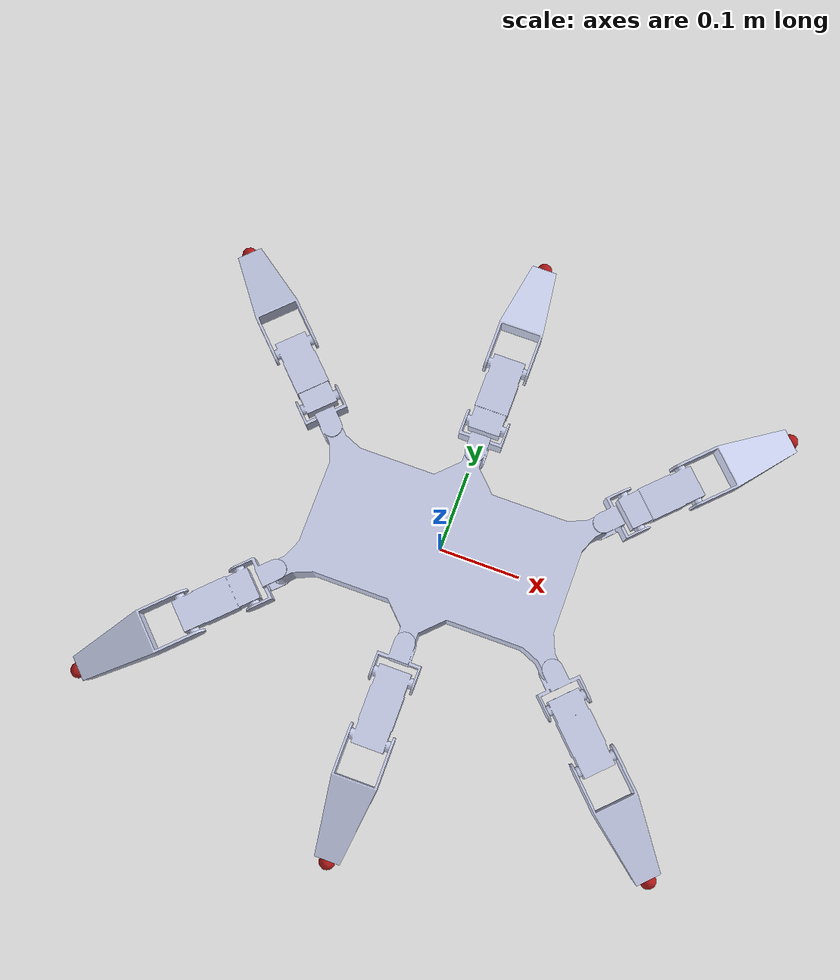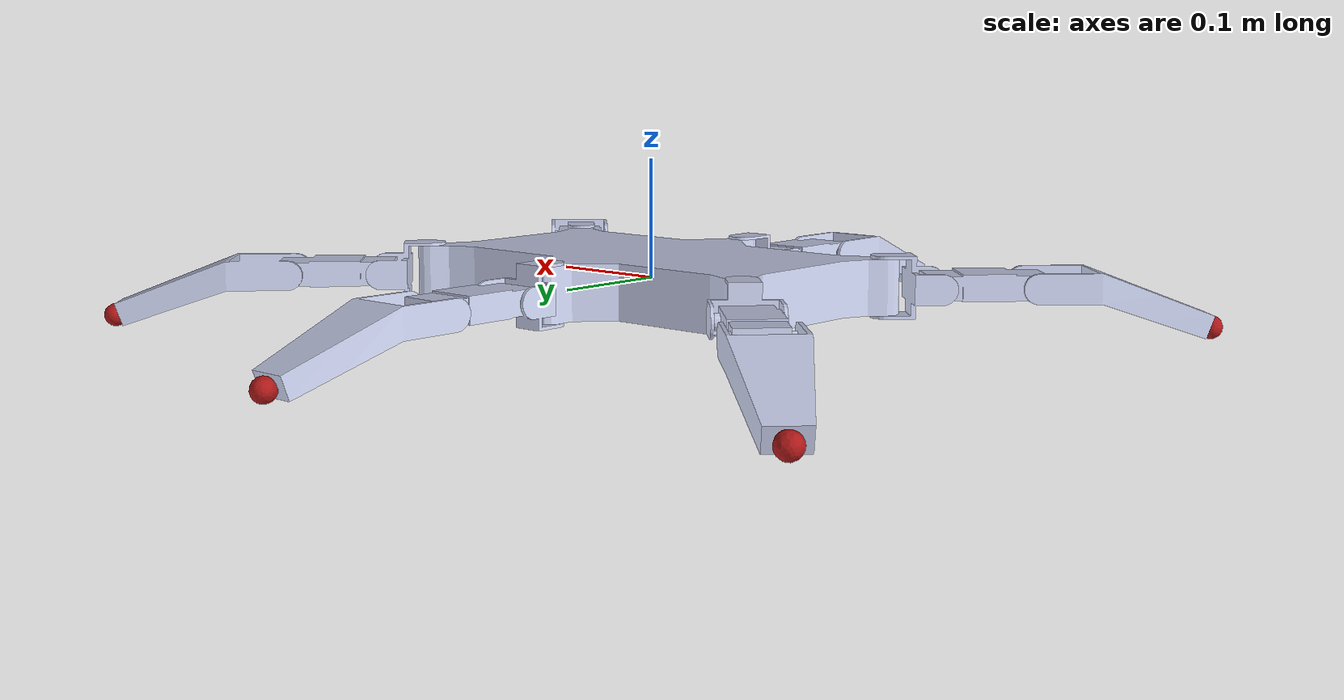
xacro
<?xml version="1.0"?>
<robot name="neurowalker" xmlns:xacro="http://www.ros.org/wiki/xacro">

    <!-- Choose whether to generate KDL compatible URDF (Extra dummy link without inertia properties) -->
    <xacro:arg name="kdl_compatible" default="false" />
    <xacro:property name="kdl_compatible" value="$(arg kdl_compatible)" />

    <!-- Include robot links -->
    <!-- Choose whether to use simplified meshes -->
    <xacro:arg name="simplify_meshes" default="true" />
    <xacro:property name="simplify_meshes" value="$(arg simplify_meshes)" />
    <xacro:include filename="macros/links.xacro" />

    <!-- Include robot joints -->
    <!-- Choose whether to add dynamics tag. In this package it doesnt matter -->
    <xacro:arg name="use_joint_dynamics" default="false" />
    <xacro:property name="use_joint_dynamics" value="$(arg use_joint_dynamics)" />
    <xacro:include filename="macros/joints.xacro" />

</robot>

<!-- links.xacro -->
<robot xmlns:xacro="http://www.ros.org/wiki/xacro">

    <xacro:include filename="link_components.xacro" />

    <xacro:if value="${kdl_compatible}">
        <link name="dummy_link" />
    </xacro:if>

    <xacro:base_link simplify_meshes="${simplify_meshes}" />

    <xacro:hip_link suffix="_1" simplify_meshes="${simplify_meshes}" />
    <xacro:femur_link suffix="_1" simplify_meshes="${simplify_meshes}" />
    <xacro:tibia_link suffix="_1" simplify_meshes="${simplify_meshes}" />
    <xacro:foot_tip_link suffix="_1" simplify_meshes="${simplify_meshes}" />

    <xacro:hip_link suffix="_2" simplify_meshes="${simplify_meshes}" />
    <xacro:femur_link suffix="_2" simplify_meshes="${simplify_meshes}" />
    <xacro:tibia_link suffix="_2" simplify_meshes="${simplify_meshes}" />
    <xacro:foot_tip_link suffix="_2" simplify_meshes="${simplify_meshes}" />

    <xacro:hip_link suffix="_3" simplify_meshes="${simplify_meshes}" />
    <xacro:femur_link suffix="_3" simplify_meshes="${simplify_meshes}" />
    <xacro:tibia_link suffix="_3" simplify_meshes="${simplify_meshes}" />
    <xacro:foot_tip_link suffix="_3" simplify_meshes="${simplify_meshes}" />

    <xacro:hip_link suffix="_4" simplify_meshes="${simplify_meshes}" />
    <xacro:femur_link suffix="_4" simplify_meshes="${simplify_meshes}" />
    <xacro:tibia_link suffix="_4" simplify_meshes="${simplify_meshes}" />
    <xacro:foot_tip_link suffix="_4" simplify_meshes="${simplify_meshes}" />

    <xacro:hip_link suffix="_5" simplify_meshes="${simplify_meshes}" />
    <xacro:femur_link suffix="_5" simplify_meshes="${simplify_meshes}" />
    <xacro:tibia_link suffix="_5" simplify_meshes="${simplify_meshes}" />
    <xacro:foot_tip_link suffix="_5" simplify_meshes="${simplify_meshes}" />

    <xacro:hip_link suffix="_6" simplify_meshes="${simplify_meshes}" />
    <xacro:femur_link suffix="_6" simplify_meshes="${simplify_meshes}" />
    <xacro:tibia_link suffix="_6" simplify_meshes="${simplify_meshes}" />
    <xacro:foot_tip_link suffix="_6" simplify_meshes="${simplify_meshes}" />

</robot>

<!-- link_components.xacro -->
<robot xmlns:xacro="http://www.ros.org/wiki/xacro">

    <!-- Full meshes file path -->
    <xacro:property name="full_meshes" value="../meshes/full/stl" />

    <!-- Simlpified meshes file path -->
    <xacro:property name="simplified_meshes" value="../meshes/simplified/stl" />

    <!-- Link colors. robot_color applies to: base_link, hip_link, femur_link, tibia_link -->
    <xacro:property name="robot_color" value="0.79216 0.81961 0.93333 1" />
    <xacro:property name="foot_tip_color" value="0.694117647058824 0.0980392156862745 0.0980392156862745 1" />

    <xacro:macro name="base_link" params="simplify_meshes">
        <link name="base_link">
            <inertial>
                <origin xyz="-4.0647E-17 -2.3675E-17 -0.00046955" rpy="0 0 0" />
                <mass value="1.0408" />
                <inertia ixx="0.0011542" ixy="1.5544E-10" ixz="7.7333E-21" iyy="0.0039905" iyz="-3.097E-20" izz="0.0049674" />
            </inertial>
            <visual>
                <origin xyz="0 0 0" rpy="0 0 0" />
                <geometry>
                    <xacro:if value="${simplify_meshes}">
                        <mesh filename="${simplified_meshes}/base_link.STL" />
                    </xacro:if>
                    <xacro:unless value="${simplify_meshes}">
                        <mesh filename="${full_meshes}/base_link.STL" />
                    </xacro:unless>
                </geometry>
                <material name="">
                    <color rgba="${robot_color}" />
                </material>
            </visual>
            <collision>
                <origin xyz="0 0 0" rpy="0 0 0" />
                <geometry>
                    <xacro:if value="${simplify_meshes}">
                        <mesh filename="${simplified_meshes}/base_link.STL" />
                    </xacro:if>
                    <xacro:unless value="${simplify_meshes}">
                        <mesh filename="${full_meshes}/base_link.STL" />
                    </xacro:unless>
                </geometry>
            </collision>
        </link>
    </xacro:macro>

    <xacro:macro name="hip_link" params="suffix simplify_meshes">
        <link name="hip_link${suffix}">
            <inertial>
                <origin xyz="0.0207539578220567 0.00016313993084466 -0.000157508593183945" rpy="0 0 0" />
                <mass value="0.00976937887973851" />
                <inertia ixx="4.36001352628253E-06" ixy="3.05074712305715E-11" ixz="1.09800410231598E-11" iyy="3.54065431889005E-06" iyz="-8.43037492910402E-22" izz="3.53980041929617E-06" />
            </inertial>
            <visual>
                <origin xyz="0 0 0" rpy="0 0 0" />
                <geometry>
                    <xacro:if value="${simplify_meshes}">
                        <mesh filename="${simplified_meshes}/hip_link.STL" />
                    </xacro:if>
                    <xacro:unless value="${simplify_meshes}">
                        <mesh filename="${full_meshes}/hip_link.STL" />
                    </xacro:unless>
                </geometry>
                <material name="">
                    <color rgba="${robot_color}" />
                </material>
            </visual>
            <collision>
                <origin xyz="0 0 0" rpy="0 0 0" />
                <geometry>
                    <xacro:if value="${simplify_meshes}">
                        <mesh filename="${simplified_meshes}/hip_link.STL" />
                    </xacro:if>
                    <xacro:unless value="${simplify_meshes}">
                        <mesh filename="${full_meshes}/hip_link.STL" />
                    </xacro:unless>
                </geometry>
            </collision>
        </link>
    </xacro:macro>

    <xacro:macro name="femur_link" params="suffix simplify_meshes">
        <link name="femur_link${suffix}">
            <inertial>
                <origin xyz="0.039 -0.000267065647974397 1.30227414534182E-05" rpy="0 0 0" />
                <mass value="0.0681610759338743" />
                <inertia ixx="1.22383085422276E-05" ixy="1.5544030901566E-10" ixz="2.33365338510496E-21" iyy="1.88790791713266E-05" iyz="1.60983936131494E-21" izz="1.12330386801315E-05" />
            </inertial>
            <visual>
                <origin xyz="0 0 0" rpy="0 0 0" />
                <geometry>
                    <xacro:if value="${simplify_meshes}">
                        <mesh filename="${simplified_meshes}/femur_link.STL" />
                    </xacro:if>
                    <xacro:unless value="${simplify_meshes}">
                        <mesh filename="${full_meshes}/femur_link.STL" />
                    </xacro:unless>
                </geometry>
                <material name="">
                    <color rgba="${robot_color}" />
                </material>
            </visual>
            <collision>
                <origin xyz="0 0 0" rpy="0 0 0" />
                <geometry>
                    <xacro:if value="${simplify_meshes}">
                        <mesh filename="${simplified_meshes}/femur_link.STL" />
                    </xacro:if>
                    <xacro:unless value="${simplify_meshes}">
                        <mesh filename="${full_meshes}/femur_link.STL" />
                    </xacro:unless>
                </geometry>
            </collision>
        </link>
    </xacro:macro>

    <xacro:macro name="tibia_link" params="suffix simplify_meshes">
        <link name="tibia_link${suffix}">
            <inertial>
                <origin xyz="0.0863740398095008 -0.0136567529957215 2.8854666747154E-08" rpy="0 0 0" />
                <mass value="0.0518953116111732" />
                <inertia ixx="2.14028837547244E-05" ixy="1.20884063145876E-05" ixz="3.60427983546376E-11" iyy="5.18668393911014E-05" iyz="-1.36891234811654E-11" izz="4.38855876942104E-05" />
            </inertial>
            <visual>
                <origin xyz="0 0 0" rpy="0 0 0" />
                <geometry>
                    <xacro:if value="${simplify_meshes}">
                        <mesh filename="${simplified_meshes}/tibia_link.STL" />
                    </xacro:if>
                    <xacro:unless value="${simplify_meshes}">
                        <mesh filename="${full_meshes}/tibia_link.STL" />
                    </xacro:unless>
                </geometry>
                <material name="">
                    <color rgba="${robot_color}" />
                </material>
            </visual>
            <collision>
                <origin xyz="0 0 0" rpy="0 0 0" />
                <geometry>
                    <xacro:if value="${simplify_meshes}">
                        <mesh filename="${simplified_meshes}/tibia_link.STL" />
                    </xacro:if>
                    <xacro:unless value="${simplify_meshes}">
                        <mesh filename="${full_meshes}/tibia_link.STL" />
                    </xacro:unless>
                </geometry>
            </collision>
        </link>
    </xacro:macro>

    <xacro:macro name="foot_tip_link" params="suffix simplify_meshes">
        <link name="foot_tip_link${suffix}">
            <inertial>
                <origin xyz="0.00119417475728155 9.48943996844099E-20 -1.38897240469442E-19" rpy="0 0 0" />
                <mass value="0.00345156312874398" />
                <inertia ixx="1.55434275887049E-07" ixy="-1.7646776450454E-24" ixz="-3.90368160252396E-24" iyy="1.2879747429975E-07" iyz="-6.17628190706261E-24" izz="1.2879747429975E-07" />
            </inertial>
            <visual>
                <origin xyz="0 0 0" rpy="0 0 0" />
                <geometry>
                    <xacro:if value="${simplify_meshes}">
                        <mesh filename="${simplified_meshes}/foot_tip_link.STL" />
                    </xacro:if>
                    <xacro:unless value="${simplify_meshes}">
                        <mesh filename="${full_meshes}/foot_tip_link.STL" />
                    </xacro:unless>
                </geometry>
                <material name="">
                    <color rgba="${foot_tip_color}" />
                </material>
            </visual>
            <collision>
                <origin xyz="0 0 0" rpy="0 0 0" />
                <geometry>
                    <xacro:if value="${simplify_meshes}">
                        <mesh filename="${simplified_meshes}/foot_tip_link.STL" />
                    </xacro:if>
                    <xacro:unless value="${simplify_meshes}">
                        <mesh filename="${full_meshes}/foot_tip_link.STL" />
                    </xacro:unless>
                </geometry>
            </collision>
        </link>
    </xacro:macro>

</robot>

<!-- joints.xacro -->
<robot xmlns:xacro="http://www.ros.org/wiki/xacro">

    <xacro:include filename="joint_components.xacro" />

    <xacro:if value="${kdl_compatible}">
        <joint name="dummy_joint" type="fixed">
            <parent link="dummy_link" />
            <child link="base_link" />
            <origin xyz="0 0 0" rpy="0 0 0" />
        </joint>
    </xacro:if>

    <xacro:hip_joint suffix="_1" use_joint_dynamics="${use_joint_dynamics}"/>
    <xacro:femur_joint suffix="_1" use_joint_dynamics="${use_joint_dynamics}" />
    <xacro:tibia_joint suffix="_1" use_joint_dynamics="${use_joint_dynamics}" />
    <xacro:foot_tip_joint suffix="_1" />

    <xacro:hip_joint suffix="_2" use_joint_dynamics="${use_joint_dynamics}"/>
    <xacro:femur_joint suffix="_2" use_joint_dynamics="${use_joint_dynamics}" />
    <xacro:tibia_joint suffix="_2" use_joint_dynamics="${use_joint_dynamics}" />
    <xacro:foot_tip_joint suffix="_2" />

    <xacro:hip_joint suffix="_3" use_joint_dynamics="${use_joint_dynamics}"/>
    <xacro:femur_joint suffix="_3" use_joint_dynamics="${use_joint_dynamics}" />
    <xacro:tibia_joint suffix="_3" use_joint_dynamics="${use_joint_dynamics}" />
    <xacro:foot_tip_joint suffix="_3" />

    <xacro:hip_joint suffix="_4" use_joint_dynamics="${use_joint_dynamics}"/>
    <xacro:femur_joint suffix="_4" use_joint_dynamics="${use_joint_dynamics}" />
    <xacro:tibia_joint suffix="_4" use_joint_dynamics="${use_joint_dynamics}" />
    <xacro:foot_tip_joint suffix="_4" />

    <xacro:hip_joint suffix="_5" use_joint_dynamics="${use_joint_dynamics}"/>
    <xacro:femur_joint suffix="_5" use_joint_dynamics="${use_joint_dynamics}" />
    <xacro:tibia_joint suffix="_5" use_joint_dynamics="${use_joint_dynamics}" />
    <xacro:foot_tip_joint suffix="_5" />

    <xacro:hip_joint suffix="_6" use_joint_dynamics="${use_joint_dynamics}"/>
    <xacro:femur_joint suffix="_6" use_joint_dynamics="${use_joint_dynamics}" />
    <xacro:tibia_joint suffix="_6" use_joint_dynamics="${use_joint_dynamics}" />
    <xacro:foot_tip_joint suffix="_6" />

</robot>

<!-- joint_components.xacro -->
<robot xmlns:xacro="http://www.ros.org/wiki/xacro">

    <!-- Hip joint properties: displacement and rotation relative to the base frame -->
    <xacro:property name="hip_1_xyz" value="0.172664 0.092664 0.0" />
    <xacro:property name="hip_1_rpy" value="0 0 ${pi/4}" />
    <xacro:property name="hip_2_xyz" value="0.172664 -0.092664 0.0" />
    <xacro:property name="hip_2_rpy" value="0 0 ${-pi/4}" />
    <xacro:property name="hip_3_xyz" value="0 0.12191 0.0" />
    <xacro:property name="hip_3_rpy" value="0 0 ${pi/2}" />
    <xacro:property name="hip_4_xyz" value="0 -0.12191 0.0" />
    <xacro:property name="hip_4_rpy" value="0 0 ${-pi/2}" />
    <xacro:property name="hip_5_xyz" value="-0.172664 0.092664 0.0" />
    <xacro:property name="hip_5_rpy" value="0 0 ${3*pi/4}" />
    <xacro:property name="hip_6_xyz" value="-0.172664 -0.092664 0.0" />
    <xacro:property name="hip_6_rpy" value="0 0 ${-3*pi/4}" />

    <!-- Femur joint properties: displacement and rotation relative to the hip frame -->
    <xacro:property name="femur_xyz" value="0.0415 0 0" />
    <xacro:property name="femur_rpy" value="${-pi/2} 0 0" />

    <!-- Tibia joint properties: displacement and rotation relative to the femur frame -->
    <xacro:property name="tibia_xyz" value="0.078 0 0" />
    <xacro:property name="tibia_rpy" value="${pi} 0 0" />

    <!-- Foot tip joint properties: displacement and rotation relative to the tibia frame -->
    <xacro:property name="foot_tip_xyz" value="${0.0515+0.106*cos(-pi/9)} ${0.106*sin(-pi/9)} 0" />
    <xacro:property name="foot_tip_rpy" value="0 0 ${-pi/9}" />

    <!-- Servo limits -->
    <xacro:property name="velocity_limit" value="5.8178" />
    <xacro:property name="effort_limit" value="1.9613" />

    <xacro:property name="servo_lower_limit" value="${-2*pi/3}" />
    <xacro:property name="servo_upper_limit" value="${2*pi/3}" />

    <xacro:macro name="hip_limit">
        <limit lower="${-pi/2}" upper="${pi/2}" velocity="${velocity_limit}"
            effort="${effort_limit}" />
    </xacro:macro>

    <xacro:macro name="servo_limit">
        <limit lower="${servo_lower_limit}" upper="${servo_upper_limit}" velocity="${velocity_limit}"
            effort="${effort_limit}" />
    </xacro:macro>

    <!-- Servo dynamics. Some random values right now -->
    <xacro:property name="joint_damping" value="0.0" />
    <xacro:property name="joint_friction" value="0.0" />
    <xacro:macro name="joint_dynamics">
        <dynamics damping="${joint_damping}" friction="${joint_friction}" />
    </xacro:macro>

    <!-- Macro for hip joint -->
    <xacro:macro name="hip_joint" params="suffix use_joint_dynamics">
        <joint name="hip_joint${suffix}" type="revolute">
            <parent link="base_link" />
            <child link="hip_link${suffix}" />
            <xacro:if value="${suffix == '_1'}">
                <origin xyz="${hip_1_xyz}" rpy="${hip_1_rpy}" />
            </xacro:if>
            <xacro:if value="${suffix == '_2'}">
                <origin xyz="${hip_2_xyz}" rpy="${hip_2_rpy}" />
            </xacro:if>
            <xacro:if value="${suffix == '_3'}">
                <origin xyz="${hip_3_xyz}" rpy="${hip_3_rpy}" />
            </xacro:if>
            <xacro:if value="${suffix == '_4'}">
                <origin xyz="${hip_4_xyz}" rpy="${hip_4_rpy}" />
            </xacro:if>
            <xacro:if value="${suffix == '_5'}">
                <origin xyz="${hip_5_xyz}" rpy="${hip_5_rpy}" />
            </xacro:if>
            <xacro:if value="${suffix == '_6'}">
                <origin xyz="${hip_6_xyz}" rpy="${hip_6_rpy}" />
            </xacro:if>
            <axis xyz="0 0 1" />
            <xacro:hip_limit />
            <xacro:if value="${use_joint_dynamics}">
                <xacro:joint_dynamics />
            </xacro:if>
        </joint>
    </xacro:macro>

    <!-- Macro for femur joint -->
    <xacro:macro name="femur_joint" params="suffix use_joint_dynamics">
        <joint name="femur_joint${suffix}" type="revolute">
            <parent link="hip_link${suffix}" />
            <child link="femur_link${suffix}" />
            <origin xyz="${femur_xyz}" rpy="${femur_rpy}" />
            <axis xyz="0 0 1" />
            <xacro:servo_limit />
            <xacro:if value="${use_joint_dynamics}">
                <xacro:joint_dynamics />
            </xacro:if>
        </joint>
    </xacro:macro>

    <!-- Macro for tibia joint -->
    <xacro:macro name="tibia_joint" params="suffix use_joint_dynamics">
        <joint name="tibia_joint${suffix}" type="revolute">
            <parent link="femur_link${suffix}" />
            <child link="tibia_link${suffix}" />
            <origin xyz="${tibia_xyz}" rpy="${tibia_rpy}" />
            <axis xyz="0 0 1" />
            <xacro:servo_limit />
            <xacro:if value="${use_joint_dynamics}">
                <xacro:joint_dynamics />
            </xacro:if>
        </joint>
    </xacro:macro>

    <!-- Macro for foot tip joint (fixed) -->
    <xacro:macro name="foot_tip_joint" params="suffix">
        <joint name="foot_tip_joint${suffix}" type="fixed">
            <parent link="tibia_link${suffix}" />
            <child link="foot_tip_link${suffix}" />
            <origin xyz="${foot_tip_xyz}" rpy="${foot_tip_rpy}" />
        </joint>
    </xacro:macro>

</robot>
